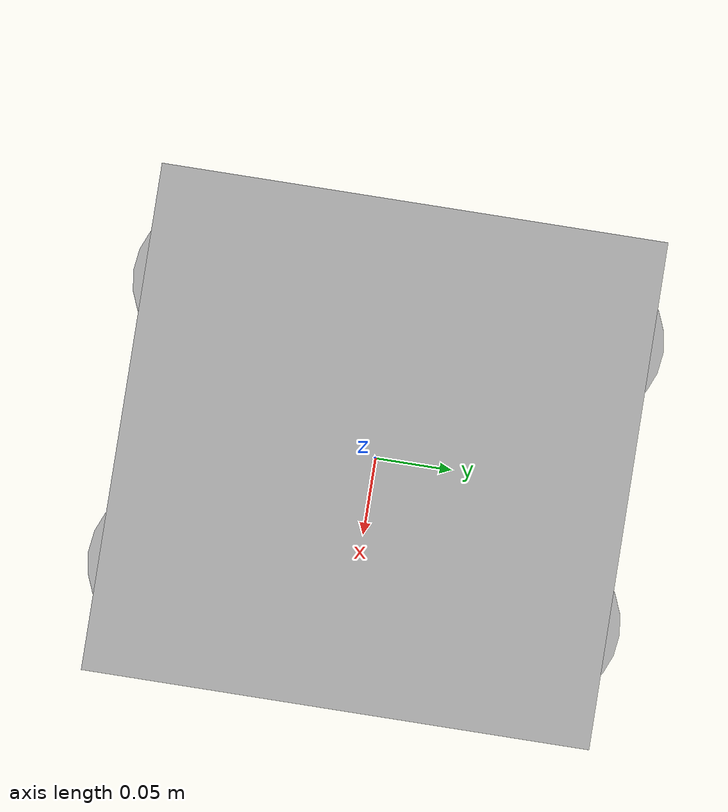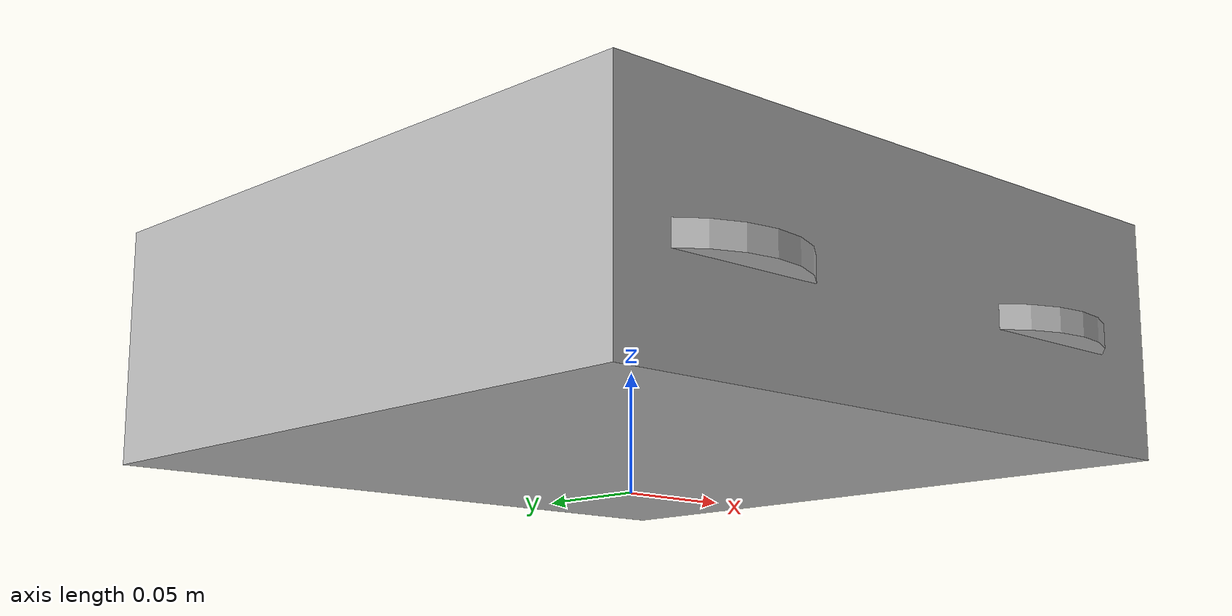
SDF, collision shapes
<?xml version="1.0"?>
<sdf version="1.6">
  <model name="parrot_bebop_2">
    <pose>0 0 0.062656 0 0 0</pose>

    <frame name="lidar_frame" attached_to='body'>
    <pose>0 0 0.5 0 0 0</pose>
    </frame>

    <!-- Main Body Link -->
    <link name="body">
    <pose frame="">0 0 0 0 -0 0</pose>
      <inertial>
      <pose frame="">0 0 0 0 -0 0</pose>
        <mass>0.503</mass>
        <inertia>
          <ixx>1.805e-3</ixx>
          <ixy>-8.619e-7</ixy>
          <iyy>1.764e-3</iyy>
          <ixz>1.555e-5</ixz>
          <iyz>3.595e-7</iyz>
          <izz>3.328e-3</izz>
        </inertia>
      </inertial>

      <!-- Add Collision -->
      <collision name="body_collision">
      <pose frame="">0 0 0 0 -0 0</pose>
        <geometry>
          <box>
            <size>0.3 0.3 0.1</size> <!-- Approximate size of the drone body -->
          </box>
        </geometry>
      </collision>

      <visual name="hull">
      <pose frame="">0 0 0 0 -0 0</pose>
        <geometry>
          <mesh>
            <uri>model://parrot_bebop_2/meshes/hull.dae</uri>
          </mesh>
        </geometry>
      </visual>

      <!-- LiDAR Sensor-->
      <sensor name = 'gpu_lidar' type = 'gpu_lidar'>
      <pose relative_to='lidar_frame'>0 0 0 0 0 0</pose>
      <topic>lidar</topic>
      <update_rate>0.1</update_rate>
      <ray>
        <scan>
            <horizontal>
                <samples>640</samples>
                <resolution>1</resolution>
                <min_angle>-1.396263</min_angle>
                <max_angle>1.396263</max_angle>
            </horizontal>
            <vertical>
                <samples>1</samples>
                <resolution>0.01</resolution>
                <min_angle>0</min_angle>
                <max_angle>0</max_angle>
            </vertical>
        </scan>
        <range>
            <min>0.08</min>
            <max>10.0</max>
            <resolution>0.01</resolution>
        </range>
    </ray>
    <always_on>1</always_on>
    <visualize>true</visualize>

      </sensor>
    </link>

    <!-- Front-Left Propeller -->
    <link name="propeller_fl">
      <pose frame=''>0.08456 0.11463 -0.00501 0 0 0</pose>
      <inertial>
      <pose frame=''>0 0 0 0 -0 0</pose>
        <mass>0.01</mass>
        <inertia>
          <ixx>1e-5</ixx>
          <iyy>1e-5</iyy>
          <izz>1e-5</izz>
        </inertia>
      </inertial>

      <!-- Add Collision -->
      <collision name="propeller_fl_collision">
      <pose frame=''>0 0 0 0 -0 0</pose>
        <geometry>
          <cylinder>
            <radius>0.05</radius>
            <length>0.01</length>
          </cylinder>
        </geometry>
      </collision>

      <visual name="propeller_fl_visual">
      <pose frame=''>0 0 0 0 -0 0</pose>
        <geometry>
          <mesh>
            <uri>model://parrot_bebop_2/meshes/propeller_fl.dae</uri>
          </mesh>
        </geometry>
      </visual>
      <gravity>1</gravity>
      <velocity_decay/>
    </link>

    <!-- FL Joint-->
     <joint name="joint_propeller_fl" type="revolute">
     <child>propeller_fl</child>
      <parent>body</parent>
      <axis>
        <xyz>0 0 1</xyz>
        <limit>
           <lower>-1e+16</lower>
          <upper>1e+16</upper>
        </limit>
        <dynamics>
          <spring_reference>0</spring_reference>
          <spring_stiffness>0</spring_stiffness>
        </dynamics>
        <use_parent_model_frame>1</use_parent_model_frame>
      </axis>
    </joint>

    <!-- Front-Right Propeller -->
    <link name="propeller_fr">
      <pose frame=''>0.08456 -0.11435 -0.00501 0 0 0</pose>
      <inertial>
       <pose frame=''>0 0 0 0 -0 0</pose>
        <mass>0.01</mass>
        <inertia>
          <ixx>1e-5</ixx>
          <iyy>1e-5</iyy>
          <izz>1e-5</izz>
        </inertia>
      </inertial>

      <collision name="propeller_fr_collision">
       <pose frame=''>0 0 0 0 -0 0</pose>
        <geometry>
          <cylinder>
            <radius>0.05</radius>
            <length>0.01</length>
          </cylinder>
        </geometry>
      </collision>

      <visual name="propeller_fr_visual">
       <pose frame=''>0 0 0 0 -0 0</pose>
        <geometry>
          <mesh>
            <uri>model://parrot_bebop_2/meshes/propeller_fr.dae</uri>
          </mesh>
        </geometry>
      </visual>
      <gravity>1</gravity>
      <velocity_decay/>
    </link>

    <!-- FR Joint-->
    <joint name="joint_propeller_fr" type="revolute">
     <child>propeller_fr</child>
      <parent>body</parent>
      <axis>
        <xyz>0 0 1</xyz>
        <limit>
          <lower>-1e+16</lower>
          <upper>1e+16</upper>
        </limit>
        <dynamics>
          <spring_reference>0</spring_reference>
          <spring_stiffness>0</spring_stiffness>
        </dynamics>
        <use_parent_model_frame>1</use_parent_model_frame>
      </axis>
    </joint>

    <!-- Rear-Left Propeller -->
    <link name="propeller_rl">
      <pose frame=''>-0.09035 0.11452 -0.00501 0 0 0</pose>
      <inertial>
      <pose frame=''>0 0 0 0 -0 0</pose>
        <mass>0.01</mass>
        <inertia>
          <ixx>1e-5</ixx>
          <iyy>1e-5</iyy>
          <izz>1e-5</izz>
        </inertia>
      </inertial>

      <collision name="propeller_rl_collision">
      <pose frame=''>0 0 0 0 -0 0</pose>
        <geometry>
          <cylinder>
            <radius>0.05</radius>
            <length>0.01</length>
          </cylinder>
        </geometry>
      </collision>

      <visual name="propeller_rl_visual">
      <pose frame=''>0 0 0 0 -0 0</pose>
        <geometry>
          <mesh>
            <uri>model://parrot_bebop_2/meshes/propeller_rl.dae</uri>
          </mesh>
        </geometry>
      </visual>
      <gravity>1</gravity>
      <velocity_decay/>
    </link>

    <!-- RL Joint-->
    <joint name="joint_propeller_rl" type="revolute">
     <child>propeller_rl</child>
      <parent>body</parent>
      <axis>
        <xyz>0 0 1</xyz>
        <limit>
          <lower>-1e+16</lower>
          <upper>1e+16</upper>
        </limit>
        <dynamics>
          <spring_reference>0</spring_reference>
          <spring_stiffness>0</spring_stiffness>
        </dynamics>
        <use_parent_model_frame>1</use_parent_model_frame>
      </axis>
    </joint>

    <link name="propeller_rr">
      <pose frame=''>-0.09035 -0.11423 -0.00501 0 0 0</pose>
      <inertial>
        <pose frame=''>0 0 0 0 -0 0</pose>
        <mass>0.01</mass>
        <inertia>
          <ixx>1e-5</ixx>
          <iyy>1e-5</iyy>
          <izz>1e-5</izz>
        </inertia>
      </inertial>

      <collision name="propeller_rr_collision">
        <pose frame=''>0 0 0 0 -0 0</pose>
        <geometry>
          <cylinder>
            <radius>0.05</radius>
            <length>0.01</length>
          </cylinder>
        </geometry>
      </collision>

      <visual name="propeller_rr_visual">
        <pose frame=''>0 0 0 0 -0 0</pose>
        <geometry>
          <mesh>
            <uri>model://parrot_bebop_2/meshes/propeller_rr.dae</uri>
          </mesh>
        </geometry>
      </visual>
      <gravity>1</gravity>
      <velocity_decay/>
    </link>

    <!-- RR Joint-->

    <joint name="joint_propeller_rr" type="revolute">
      <child>propeller_rr</child>
      <parent>body</parent>
      <axis>
        <xyz>0 0 1</xyz>
        <limit>
          <lower>-1e+16</lower>
          <upper>1e+16</upper>
        </limit>
        <dynamics>
          <spring_reference>0</spring_reference>
          <spring_stiffness>0</spring_stiffness>
        </dynamics>
        <use_parent_model_frame>1</use_parent_model_frame>
      </axis>
    </joint>
  </model>
</sdf>
